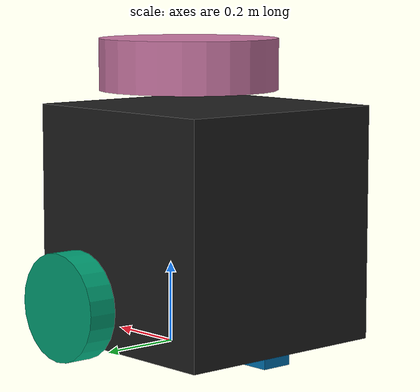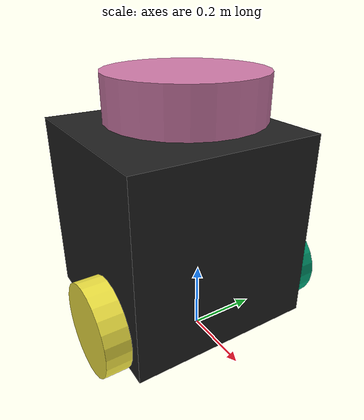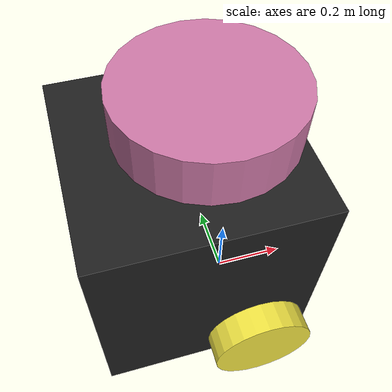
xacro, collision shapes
<?xml version="1.0" ?>
<robot name="turtlebot3_burger" xmlns:xacro="http://ros.org/wiki/xacro">
  <link name="base_footprint"/>

  <joint name="base_joint" type="fixed">
    <parent link="base_footprint"/>
    <child link="base_link"/>
    <origin xyz="0.0 0.0 0.040" rpy="0 0 0"/>
  </joint>

  <link name="base_link">
    <visual>
      <origin xyz="-0.128 0 0.0" rpy="0 0 0"/>
      <geometry>
        <mesh filename="package://turtlebot3_description/meshes/bases/burger_base.stl" scale="0.004 0.004 0.004"/>
      </geometry>
      <material name="light_black"/>
    </visual>

    <collision>
      <origin xyz="-0.128 0 0.280" rpy="0 0 0"/>
      <geometry>
        <box size="0.560 0.560 0.572"/>
      </geometry>
    </collision>

    <inertial>
      <origin xyz="0 0 0" rpy="0 0 0"/>
      <mass value="3.30"/>
      <inertia ixx="0.035" ixy="0.0" ixz="0.0"
               iyy="0.033" iyz="0.0"
               izz="0.032" />
    </inertial>
  </link>

  <joint name="wheel_left_joint" type="continuous">
    <parent link="base_link"/>
    <child link="wheel_left_link"/>
    <origin xyz="0.0 0.32 0.092" rpy="-1.57 0 0"/>
    <axis xyz="0 0 1"/>
  </joint>

  <link name="wheel_left_link">
    <visual>
      <origin xyz="0 0 0" rpy="1.57 0 0"/>
      <geometry>
        <mesh filename="package://turtlebot3_description/meshes/wheels/left_tire.stl" scale="0.004 0.004 0.004"/>
      </geometry>
      <material name="dark"/>
    </visual>

    <collision>
      <origin xyz="0 0 0" rpy="0 0 0"/>
      <geometry>
        <cylinder length="0.072" radius="0.132"/>
      </geometry>
    </collision>

    <inertial>
      <origin xyz="0 0 0" />
      <mass value="0.114" />
      <inertia ixx="0.0002" ixy="0.0" ixz="0.0"
               iyy="0.0002" iyz="0.0"
               izz="0.0004" />
    </inertial>
  </link>

  <joint name="wheel_right_joint" type="continuous">
    <parent link="base_link"/>
    <child link="wheel_right_link"/>
    <origin xyz="0.0 -0.32 0.092" rpy="-1.57 0 0"/>
    <axis xyz="0 0 1"/>
  </joint>

  <link name="wheel_right_link">
    <visual>
      <origin xyz="0 0 0" rpy="1.57 0 0"/>
      <geometry>
        <mesh filename="package://turtlebot3_description/meshes/wheels/right_tire.stl" scale="0.004 0.004 0.004"/>
      </geometry>
      <material name="dark"/>
    </visual>

    <collision>
      <origin xyz="0 0 0" rpy="0 0 0"/>
      <geometry>
        <cylinder length="0.072" radius="0.132"/>
      </geometry>
    </collision>

    <inertial>
      <origin xyz="0 0 0" />
      <mass value="0.114" />
      <inertia ixx="0.0002" ixy="0.0" ixz="0.0"
               iyy="0.0002" iyz="0.0"
               izz="0.0004" />
    </inertial>
  </link>

  <joint name="caster_back_joint" type="fixed">
    <parent link="base_link"/>
    <child link="caster_back_link"/>
    <origin xyz="-0.324 0 -0.016" rpy="-1.57 0 0"/>
  </joint>

  <link name="caster_back_link">
    <collision>
      <origin xyz="0 0.004 0" rpy="0 0 0"/>
      <geometry>
        <box size="0.120 0.036 0.080"/>
      </geometry>
    </collision>

    <inertial>
      <origin xyz="0 0 0" />
      <mass value="0.02" />
      <inertia ixx="0.004" ixy="0.0" ixz="0.0"
               iyy="0.004" iyz="0.0"
               izz="0.004" />
    </inertial>
  </link>

  <joint name="imu_joint" type="fixed">
    <parent link="base_link"/>
    <child link="imu_link"/>
    <origin xyz="-0.128 0 0.272" rpy="0 0 0"/>
  </joint>

  <link name="imu_link"/>

  <joint name="scan_joint" type="fixed">
    <parent link="base_link"/>
    <child link="base_scan"/>
    <origin xyz="-0.128 0 0.688" rpy="0 0 0"/>
  </joint>

  <link name="base_scan">
    <visual>
      <origin xyz="0 0 0.0" rpy="0 0 0"/>
      <geometry>
        <mesh filename="package://turtlebot3_description/meshes/sensors/lds.stl" scale="0.004 0.004 0.004"/>
      </geometry>
      <material name="dark"/>
    </visual>

    <collision>
      <origin xyz="0.060 0 -0.026" rpy="0 0 0"/>
      <geometry>
        <cylinder length="0.126" radius="0.220"/>
      </geometry>
    </collision>

    <inertial>
      <mass value="0.456" />
      <origin xyz="0 0 0" />
      <inertia ixx="0.004" ixy="0.0" ixz="0.0"
               iyy="0.004" iyz="0.0"
               izz="0.004" />
    </inertial>
  </link>

</robot>
